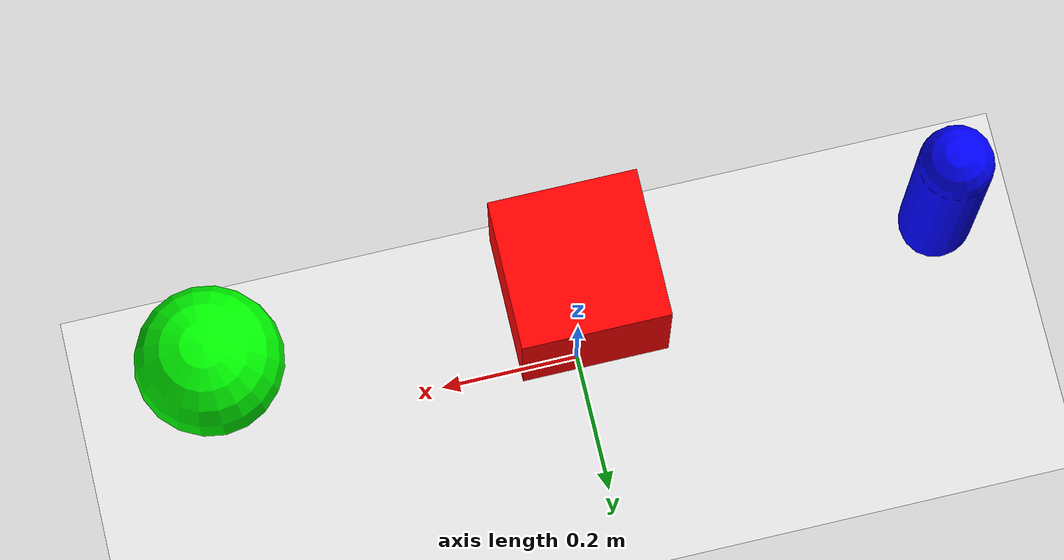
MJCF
<mujoco>
  <worldbody>
    <light diffuse=".5 .5 .5" pos="0 0 3" dir="0 0 -1"/>
    <geom type="plane" size="2 2 0.1" rgba=".9 .9 .9 1"/>

    <body name="box" pos="0 0 0.5">
      <joint type="free"/>
      <geom type="box" size="0.1 0.1 0.1" rgba="1 0 0 1" mass="1"/>
    </body>

    <body name="sphere" pos="0.5 0 0.5">
      <joint type="free"/>
      <geom type="sphere" size="0.1" rgba="0 1 0 1" mass="1"/>
    </body>

    <body name="capsule" pos="-0.5 0 0.5">
      <joint type="free"/>
      <geom type="capsule" size="0.05 0.15" rgba="0 0 1 1" mass="1"/>
    </body>
  </worldbody>
</mujoco>
